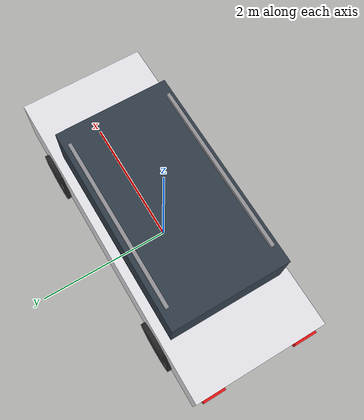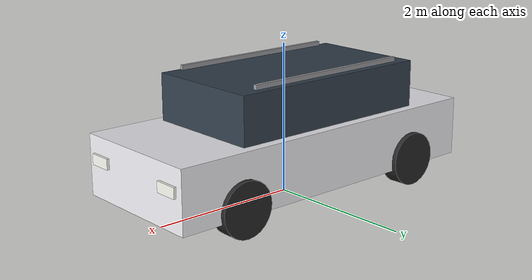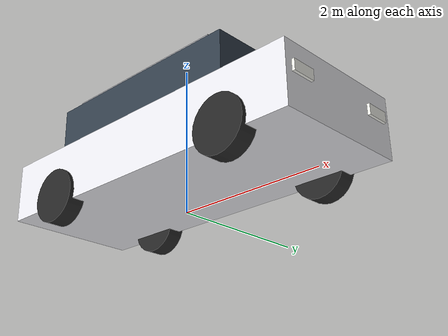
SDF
<?xml version="1.0" ?>
<sdf version="1.8">
  <model name="parked_car_suv">
    <static>true</static>
    <link name="car_link">

      <!-- 物理碰撞剛體 (單一 Box 幾何) -->
      <collision name="suv_col">
        <pose>0 0 0.8 0 0 0</pose>
        <geometry><box><size>4.7 1.88 1.6</size></box></geometry>
      </collision>

      <!-- 視覺：車身主體 (Alpine Pearl White Body) -->
      <visual name="body_main">
        <pose>0 0 0.65 0 0 0</pose>
        <geometry><box><size>4.7 1.88 0.8</size></box></geometry>
        <material><ambient>0.88 0.88 0.90 1</ambient><diffuse>0.94 0.94 0.96 1</diffuse></material>
      </visual>

      <!-- 視覺：高頂座艙 (SUV High Roof Cabin) -->
      <visual name="cabin">
        <pose>-0.1 0 1.3 0 0 0</pose>
        <geometry><box><size>2.9 1.62 0.75</size></box></geometry>
        <material><ambient>0.15 0.18 0.22 0.9</ambient><diffuse>0.20 0.25 0.30 0.9</diffuse></material>
      </visual>

      <!-- 視覺：車頂行李架導軌 (Roof Rails) -->
      <visual name="roof_rail_l"><pose>-0.1 0.72 1.72 0 0 0</pose><geometry><box><size>2.4 0.05 0.06</size></box></geometry><material><ambient>0.5 0.5 0.52 1</ambient><diffuse>0.6 0.6 0.62 1</diffuse></material></visual>
      <visual name="roof_rail_r"><pose>-0.1 -0.72 1.72 0 0 0</pose><geometry><box><size>2.4 0.05 0.06</size></box></geometry><material><ambient>0.5 0.5 0.52 1</ambient><diffuse>0.6 0.6 0.62 1</diffuse></material></visual>

      <!-- 視覺：大尺寸越野/休旅車輪 (4 SUV Wheels: 半徑 0.36m) -->
      <visual name="wheel_fl"><pose>1.45 0.88 0.36 1.5708 0 0</pose><geometry><cylinder><radius>0.36</radius><length>0.24</length></cylinder></geometry><material><ambient>0.1 0.1 0.1 1</ambient><diffuse>0.15 0.15 0.15 1</diffuse></material></visual>
      <visual name="wheel_fr"><pose>1.45 -0.88 0.36 1.5708 0 0</pose><geometry><cylinder><radius>0.36</radius><length>0.24</length></cylinder></geometry><material><ambient>0.1 0.1 0.1 1</ambient><diffuse>0.15 0.15 0.15 1</diffuse></material></visual>
      <visual name="wheel_rl"><pose>-1.45 0.88 0.36 1.5708 0 0</pose><geometry><cylinder><radius>0.36</radius><length>0.24</length></cylinder></geometry><material><ambient>0.1 0.1 0.1 1</ambient><diffuse>0.15 0.15 0.15 1</diffuse></material></visual>
      <visual name="wheel_rr"><pose>-1.45 -0.88 0.36 1.5708 0 0</pose><geometry><cylinder><radius>0.36</radius><length>0.24</length></cylinder></geometry><material><ambient>0.1 0.1 0.1 1</ambient><diffuse>0.15 0.15 0.15 1</diffuse></material></visual>

      <!-- 視覺：頭燈與尾燈 -->
      <visual name="headlight_l"><pose>2.36 0.68 0.75 0 0 0</pose><geometry><box><size>0.05 0.32 0.14</size></box></geometry><material><ambient>0.9 0.9 0.85 1</ambient><diffuse>0.98 0.98 0.95 1</diffuse><emissive>0.3 0.3 0.28 1</emissive></material></visual>
      <visual name="headlight_r"><pose>2.36 -0.68 0.75 0 0 0</pose><geometry><box><size>0.05 0.32 0.14</size></box></geometry><material><ambient>0.9 0.9 0.85 1</ambient><diffuse>0.98 0.98 0.95 1</diffuse><emissive>0.3 0.3 0.28 1</emissive></material></visual>
      <visual name="taillight_l"><pose>-2.36 0.68 0.80 0 0 0</pose><geometry><box><size>0.05 0.32 0.14</size></box></geometry><material><ambient>0.85 0.05 0.05 1</ambient><diffuse>0.92 0.08 0.08 1</diffuse><emissive>0.25 0.02 0.02 1</emissive></material></visual>
      <visual name="taillight_r"><pose>-2.36 -0.68 0.80 0 0 0</pose><geometry><box><size>0.05 0.32 0.14</size></box></geometry><material><ambient>0.85 0.05 0.05 1</ambient><diffuse>0.92 0.08 0.08 1</diffuse><emissive>0.25 0.02 0.02 1</emissive></material></visual>
    </link>
  </model>
</sdf>
